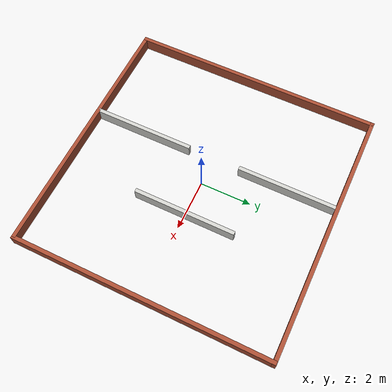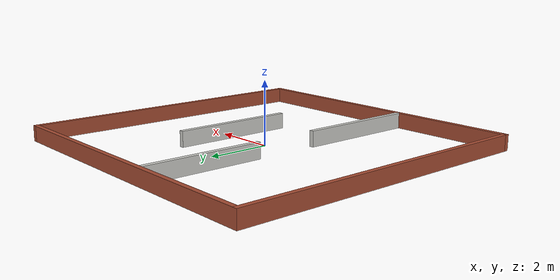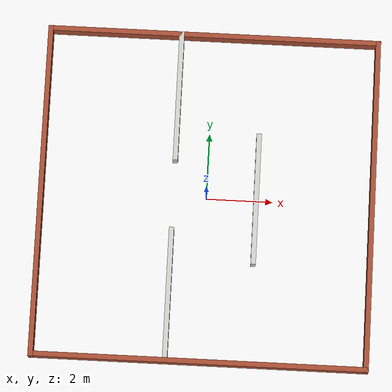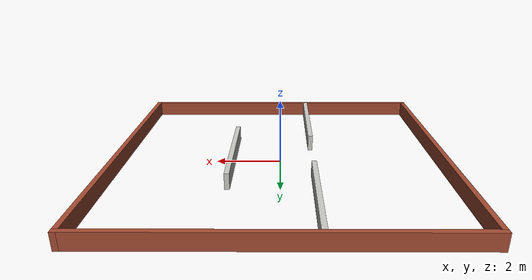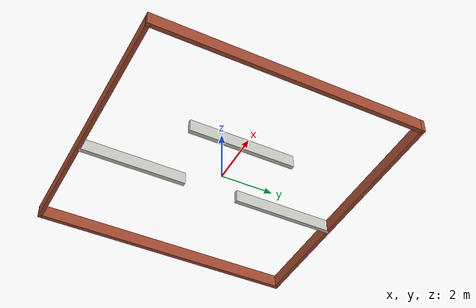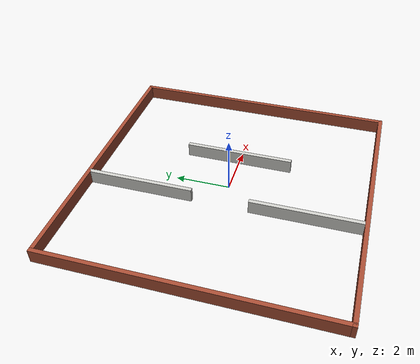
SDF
<?xml version='1.0'?>
<sdf version='1.7'>
  <model name='map_lvl1'>
    <pose>0 0 0 0 -0 0</pose>
    <link name='Wall_0'>
      <collision name='Wall_0_Collision'>
        <geometry>
          <box>
            <size>10.15 0.15 0.5</size>
          </box>
        </geometry>
        <pose>0 0 0.25 0 -0 0</pose>
      </collision>
      <visual name='Wall_0_Visual'>
        <pose>0 0 0.25 0 -0 0</pose>
        <geometry>
          <box>
            <size>10.15 0.15 0.5</size>
          </box>
        </geometry>
        <material>
          <script>
            <uri>file://media/materials/scripts/gazebo.material</uri>
            <name>Gazebo/Bricks</name>
          </script>
          <ambient>1 1 1 1</ambient>
        </material>
        <meta>
          <layer>0</layer>
        </meta>
      </visual>
      <pose>-5 0 0 0 -0 1.5708</pose>
    </link>
    <link name='Wall_10'>
      <collision name='Wall_10_Collision'>
        <geometry>
          <box>
            <size>4 0.15 0.5</size>
          </box>
        </geometry>
        <pose>0 0 0.25 0 -0 0</pose>
      </collision>
      <visual name='Wall_10_Visual'>
        <pose>0 0 0.25 0 -0 0</pose>
        <geometry>
          <box>
            <size>4 0.15 0.5</size>
          </box>
        </geometry>
        <material>
          <script>
            <uri>file://media/materials/scripts/gazebo.material</uri>
            <name>Gazebo/CeilingTiled</name>
          </script>
          <ambient>1 0.764706 0.305882 1</ambient>
        </material>
        <meta>
          <layer>0</layer>
        </meta>
      </visual>
      <pose>-1 -2.984 0 0 -0 1.5708</pose>
    </link>
    <link name='Wall_12'>
      <collision name='Wall_12_Collision'>
        <geometry>
          <box>
            <size>4 0.15 0.5</size>
          </box>
        </geometry>
        <pose>0 0 0.25 0 -0 0</pose>
      </collision>
      <visual name='Wall_12_Visual'>
        <pose>0 0 0.25 0 -0 0</pose>
        <geometry>
          <box>
            <size>4 0.15 0.5</size>
          </box>
        </geometry>
        <material>
          <script>
            <uri>file://media/materials/scripts/gazebo.material</uri>
            <name>Gazebo/CeilingTiled</name>
          </script>
          <ambient>1 0.764706 0.305882 1</ambient>
        </material>
        <meta>
          <layer>0</layer>
        </meta>
      </visual>
      <pose>1.5 0.013 0 0 -0 -1.5708</pose>
    </link>
    <link name='Wall_2'>
      <collision name='Wall_2_Collision'>
        <geometry>
          <box>
            <size>10.15 0.15 0.5</size>
          </box>
        </geometry>
        <pose>0 0 0.25 0 -0 0</pose>
      </collision>
      <visual name='Wall_2_Visual'>
        <pose>0 0 0.25 0 -0 0</pose>
        <geometry>
          <box>
            <size>10.15 0.15 0.5</size>
          </box>
        </geometry>
        <material>
          <script>
            <uri>file://media/materials/scripts/gazebo.material</uri>
            <name>Gazebo/Bricks</name>
          </script>
          <ambient>1 1 1 1</ambient>
        </material>
        <meta>
          <layer>0</layer>
        </meta>
      </visual>
      <pose>0 -5 0 0 -0 0</pose>
    </link>
    <link name='Wall_4'>
      <collision name='Wall_4_Collision'>
        <geometry>
          <box>
            <size>10.15 0.15 0.5</size>
          </box>
        </geometry>
        <pose>0 0 0.25 0 -0 0</pose>
      </collision>
      <visual name='Wall_4_Visual'>
        <pose>0 0 0.25 0 -0 0</pose>
        <geometry>
          <box>
            <size>10.15 0.15 0.5</size>
          </box>
        </geometry>
        <material>
          <script>
            <uri>file://media/materials/scripts/gazebo.material</uri>
            <name>Gazebo/Bricks</name>
          </script>
          <ambient>1 1 1 1</ambient>
        </material>
        <meta>
          <layer>0</layer>
        </meta>
      </visual>
      <pose>5 0 0 0 -0 1.5708</pose>
    </link>
    <link name='Wall_6'>
      <collision name='Wall_6_Collision'>
        <geometry>
          <box>
            <size>10.15 0.15 0.5</size>
          </box>
        </geometry>
        <pose>0 0 0.25 0 -0 0</pose>
      </collision>
      <visual name='Wall_6_Visual'>
        <pose>0 0 0.25 0 -0 0</pose>
        <geometry>
          <box>
            <size>10.15 0.15 0.5</size>
          </box>
        </geometry>
        <material>
          <script>
            <uri>file://media/materials/scripts/gazebo.material</uri>
            <name>Gazebo/Bricks</name>
          </script>
          <ambient>1 1 1 1</ambient>
        </material>
        <meta>
          <layer>0</layer>
        </meta>
      </visual>
      <pose>0 5 0 0 -0 3.14159</pose>
    </link>
    <link name='Wall_8'>
      <collision name='Wall_8_Collision'>
        <geometry>
          <box>
            <size>4 0.15 0.5</size>
          </box>
        </geometry>
        <pose>0 0 0.25 0 -0 0</pose>
      </collision>
      <visual name='Wall_8_Visual'>
        <pose>0 0 0.25 0 -0 0</pose>
        <geometry>
          <box>
            <size>4 0.15 0.5</size>
          </box>
        </geometry>
        <material>
          <script>
            <uri>file://media/materials/scripts/gazebo.material</uri>
            <name>Gazebo/CeilingTiled</name>
          </script>
          <ambient>1 0.764706 0.305882 1</ambient>
        </material>
        <meta>
          <layer>0</layer>
        </meta>
      </visual>
      <pose>-1 3.075 0 0 -0 -1.5708</pose>
    </link>
    <static>1</static>
  </model>
</sdf>
